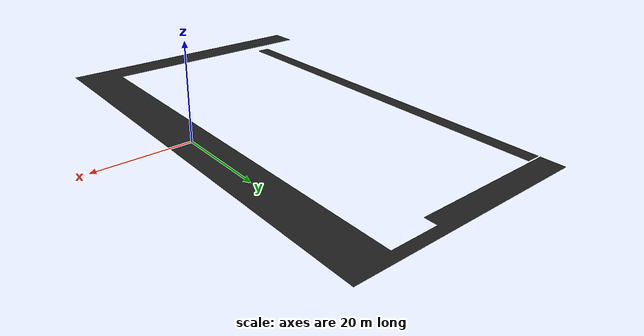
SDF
<?xml version='1.0'?>
<sdf version='1.7'>
  <model name='roads'>
    <link name='link_0'>
      <inertial>
        <mass>1</mass>
        <inertia>
          <ixx>0.166667</ixx>
          <ixy>0</ixy>
          <ixz>0</ixz>
          <iyy>0.166667</iyy>
          <iyz>0</iyz>
          <izz>0.166667</izz>
        </inertia>
      </inertial>
      <pose>-0 2e-06 0 0 -0 0</pose>
      <visual name='visual'>
        <pose>0 0 0 0 -0 0</pose>
        <geometry>
          <mesh>
            <uri>/my_src/golf_kart/golf_kart/meshes/srm_map_roads.stl</uri>
            <scale>1 1 1</scale>
          </mesh>
        </geometry>
        <material>
          <lighting>1</lighting>
          <script>
            <uri>file://media/materials/scripts/gazebo.material</uri>
            <name>Gazebo/Black</name>
          </script>
          <shader type='pixel'/>
        </material>
        <transparency>0</transparency>
        <cast_shadows>0</cast_shadows>
      </visual>
    </link>
    <static>1</static>
    <allow_auto_disable>1</allow_auto_disable>
  </model>
</sdf>
